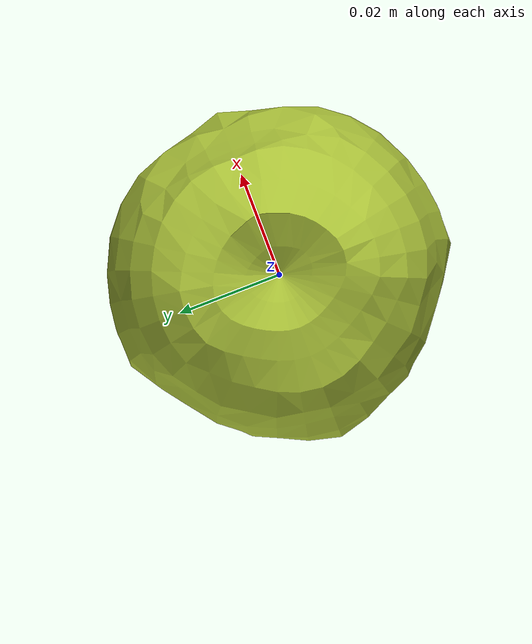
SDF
<?xml version="1.0" ?>
<sdf version="1.6">
<model name="clf_apple">
  <link name="link">
    <inertial>
      <mass>0.150</mass>
      <inertia>
        <ixx>0.000063375</ixx>
        <ixy>0</ixy>
        <ixz>0</ixz>
        <iyy>0.000063375</iyy>
        <iyz>0</iyz>
        <izz>0.000063375</izz>
      </inertia>
    </inertial>
    <collision name="collision">
      <geometry>
        <mesh>
          <uri>model://clf_apple/meshes/clf_apple.dae</uri>
        </mesh>
      </geometry>
      <surface>
        <friction>
          <ode>
            <mu>1.0</mu>
            <mu2>1.0</mu2>
          </ode>
        </friction>
        <contact>
          <ode>
            <kp>10000000.0</kp>
            <kd>1.0</kd>
            <min_depth>0.001</min_depth>
            <max_vel>0.1</max_vel>
          </ode>
        </contact>
      </surface>
    </collision>
    <visual name="visual">
      <material>
        <ambient>0.67 0.76 0.22 1.0</ambient>
        <diffuse>0.67 0.76 0.22 1.0</diffuse>
        <specular>0 0 0 0</specular>
        <emissive>0 0 0 1</emissive>
      </material>
      <geometry>
        <mesh>
          <uri>model://clf_apple/meshes/clf_apple.dae</uri>
        </mesh>
      </geometry>
    </visual>
  </link>
</model>
</sdf>
